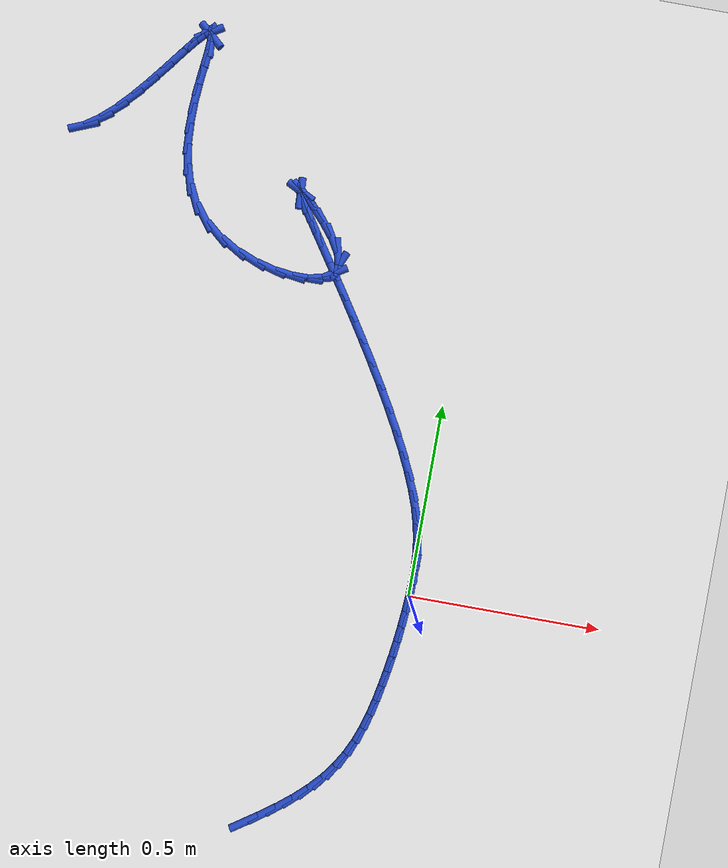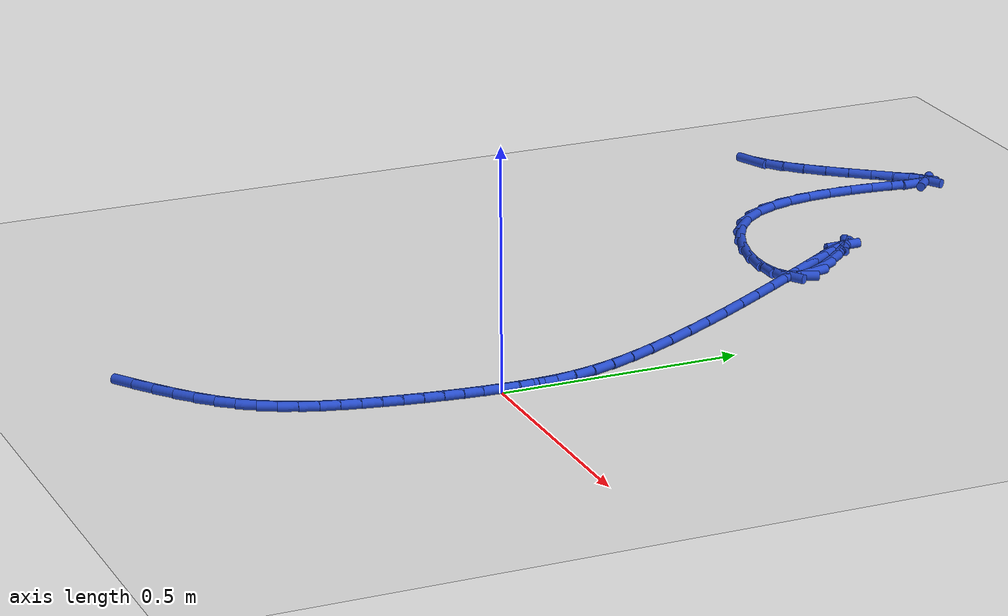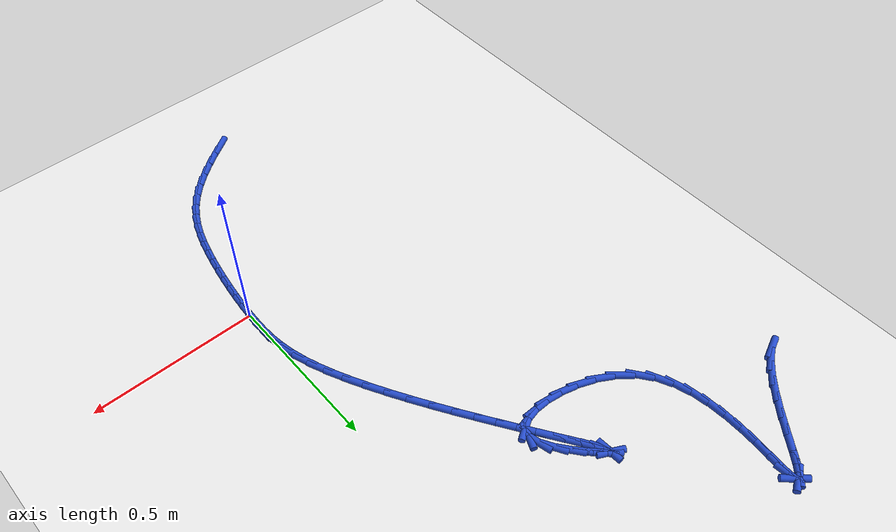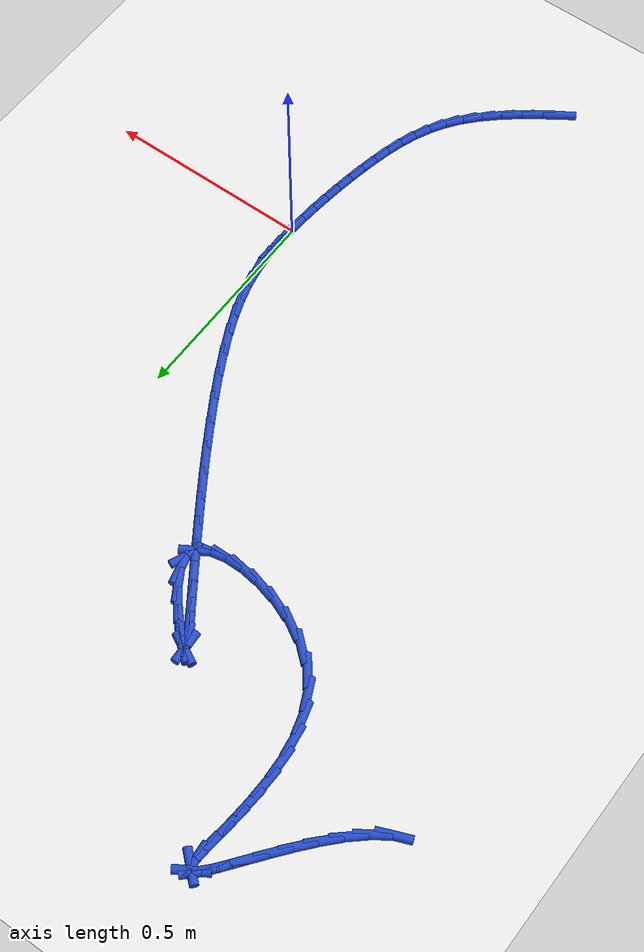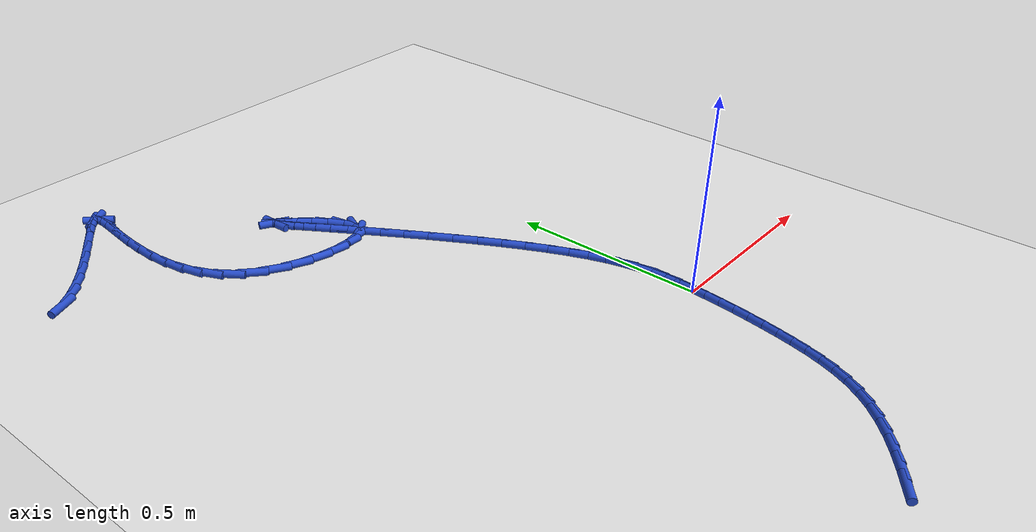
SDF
<sdf version="1.6">
 <world name="default">
  <model name="ground_plane">
   <static>1</static>
   <link name="link">
    <collision name="collision">
     <geometry><plane><normal>0 0 1</normal><size>100 100</size></plane></geometry>
     <surface><friction><ode><mu>100</mu><mu2>50</mu2></ode></friction></surface>
    </collision>
    <visual name="visual">
     <cast_shadows>0</cast_shadows>
     <geometry><plane><normal>0 0 1</normal><size>100 100</size></plane></geometry>
     <material>
      <script><uri>file://media/materials/scripts/gazebo.material</uri><name>Gazebo/WhiteGlow</name></script>
     </material>
    </visual>
   </link>
  </model>
  <model name="line">
   <link name="link_0">
    <pose>4.0115480381963664e-18 0.0 0.01 0 1.57 1.5303201860089708</pose>
    <collision name="collision">
     <geometry><cylinder><radius>0.01</radius><length>0.08</length></cylinder></geometry>
    </collision>
    <visual name="visual">
     <material>
      <script><name>Gazebo/Blue</name><uri>file://media/materials/scripts/gazebo.material</uri></script>
     </material>
     <geometry><cylinder><radius>0.01</radius><length>0.08</length></cylinder></geometry>
    </visual>
   </link>
   <link name="link_1">
    <pose>0.001520172077840823 0.037536726144683 0.01 0 1.57 -1.569441561724418</pose>
    <collision name="collision">
     <geometry><cylinder><radius>0.01</radius><length>0.08</length></cylinder></geometry>
    </collision>
    <visual name="visual">
     <material>
      <script><name>Gazebo/Blue</name><uri>file://media/materials/scripts/gazebo.material</uri></script>
     </material>
     <geometry><cylinder><radius>0.01</radius><length>0.08</length></cylinder></geometry>
    </visual>
   </link>
   <link name="link_2">
    <pose>0.0014697098571924629 0.07478465264896869 0.01 0 1.57 -1.5113080191222836</pose>
    <collision name="collision">
     <geometry><cylinder><radius>0.01</radius><length>0.08</length></cylinder></geometry>
    </collision>
    <visual name="visual">
     <material>
      <script><name>Gazebo/Blue</name><uri>file://media/materials/scripts/gazebo.material</uri></script>
     </material>
     <geometry><cylinder><radius>0.01</radius><length>0.08</length></cylinder></geometry>
    </visual>
   </link>
   <link name="link_3">
    <pose>-0.0007749658739909663 0.11247318894364157 0.01 0 1.57 -1.4412465973038162</pose>
    <collision name="collision">
     <geometry><cylinder><radius>0.01</radius><length>0.08</length></cylinder></geometry>
    </collision>
    <visual name="visual">
     <material>
      <script><name>Gazebo/Blue</name><uri>file://media/materials/scripts/gazebo.material</uri></script>
     </material>
     <geometry><cylinder><radius>0.01</radius><length>0.08</length></cylinder></geometry>
    </visual>
   </link>
   <link name="link_4">
    <pose>-0.005837434327755361 0.15133174445948613 0.01 0 1.57 -1.3651048219305941</pose>
    <collision name="collision">
     <geometry><cylinder><radius>0.01</radius><length>0.08</length></cylinder></geometry>
    </collision>
    <visual name="visual">
     <material>
      <script><name>Gazebo/Blue</name><uri>file://media/materials/scripts/gazebo.material</uri></script>
     </material>
     <geometry><cylinder><radius>0.01</radius><length>0.08</length></cylinder></geometry>
    </visual>
   </link>
   <link name="link_5">
    <pose>-0.014341274716146612 0.1920897286272868 0.01 0 1.57 -1.2888235404271693</pose>
    <collision name="collision">
     <geometry><cylinder><radius>0.01</radius><length>0.08</length></cylinder></geometry>
    </collision>
    <visual name="visual">
     <material>
      <script><name>Gazebo/Blue</name><uri>file://media/materials/scripts/gazebo.material</uri></script>
     </material>
     <geometry><cylinder><radius>0.01</radius><length>0.08</length></cylinder></geometry>
    </visual>
   </link>
   <link name="link_6">
    <pose>-0.02691006625121061 0.23547655087782815 0.01 0 1.57 -1.2180053051059394</pose>
    <collision name="collision">
     <geometry><cylinder><radius>0.01</radius><length>0.08</length></cylinder></geometry>
    </collision>
    <visual name="visual">
     <material>
      <script><name>Gazebo/Blue</name><uri>file://media/materials/scripts/gazebo.material</uri></script>
     </material>
     <geometry><cylinder><radius>0.01</radius><length>0.08</length></cylinder></geometry>
    </visual>
   </link>
   <link name="link_7">
    <pose>-0.04409027080819526 0.28213720961980204 0.01 0 1.57 -1.1616342007853082</pose>
    <collision name="collision">
     <geometry><cylinder><radius>0.01</radius><length>0.08</length></cylinder></geometry>
    </collision>
    <visual name="visual">
     <material>
      <script><name>Gazebo/Blue</name><uri>file://media/materials/scripts/gazebo.material</uri></script>
     </material>
     <geometry><cylinder><radius>0.01</radius><length>0.08</length></cylinder></geometry>
    </visual>
   </link>
   <link name="link_8">
    <pose>-0.06565740063969394 0.3318728379479226 0.01 0 1.57 -1.1191465528507305</pose>
    <collision name="collision">
     <geometry><cylinder><radius>0.01</radius><length>0.08</length></cylinder></geometry>
    </collision>
    <visual name="visual">
     <material>
      <script><name>Gazebo/Blue</name><uri>file://media/materials/scripts/gazebo.material</uri></script>
     </material>
     <geometry><cylinder><radius>0.01</radius><length>0.08</length></cylinder></geometry>
    </visual>
   </link>
   <link name="link_9">
    <pose>-0.09094335428555372 0.383998998675797 0.01 0 1.57 -1.0862942908348723</pose>
    <collision name="collision">
     <geometry><cylinder><radius>0.01</radius><length>0.08</length></cylinder></geometry>
    </collision>
    <visual name="visual">
     <material>
      <script><name>Gazebo/Blue</name><uri>file://media/materials/scripts/gazebo.material</uri></script>
     </material>
     <geometry><cylinder><radius>0.01</radius><length>0.08</length></cylinder></geometry>
    </visual>
   </link>
   <link name="link_10">
    <pose>-0.11927471622429982 0.4378254379567816 0.01 0 1.57 -1.0603783241716511</pose>
    <collision name="collision">
     <geometry><cylinder><radius>0.01</radius><length>0.08</length></cylinder></geometry>
    </collision>
    <visual name="visual">
     <material>
      <script><name>Gazebo/Blue</name><uri>file://media/materials/scripts/gazebo.material</uri></script>
     </material>
     <geometry><cylinder><radius>0.01</radius><length>0.08</length></cylinder></geometry>
    </visual>
   </link>
   <link name="link_11">
    <pose>-0.1499780709344574 0.4926619019442317 0.01 0 1.57 -1.0396504630270211</pose>
    <collision name="collision">
     <geometry><cylinder><radius>0.01</radius><length>0.08</length></cylinder></geometry>
    </collision>
    <visual name="visual">
     <material>
      <script><name>Gazebo/Blue</name><uri>file://media/materials/scripts/gazebo.material</uri></script>
     </material>
     <geometry><cylinder><radius>0.01</radius><length>0.08</length></cylinder></geometry>
    </visual>
   </link>
   <link name="link_12">
    <pose>-0.18238000289455186 0.547818136791504 0.01 0 1.57 -1.0229527557633562</pose>
    <collision name="collision">
     <geometry><cylinder><radius>0.01</radius><length>0.08</length></cylinder></geometry>
    </collision>
    <visual name="visual">
     <material>
      <script><name>Gazebo/Blue</name><uri>file://media/materials/scripts/gazebo.material</uri></script>
     </material>
     <geometry><cylinder><radius>0.01</radius><length>0.08</length></cylinder></geometry>
    </visual>
   </link>
   <link name="link_13">
    <pose>-0.21580709658310823 0.6026038886519541 0.01 0 1.57 -1.009515108304731</pose>
    <collision name="collision">
     <geometry><cylinder><radius>0.01</radius><length>0.08</length></cylinder></geometry>
    </collision>
    <visual name="visual">
     <material>
      <script><name>Gazebo/Blue</name><uri>file://media/materials/scripts/gazebo.material</uri></script>
     </material>
     <geometry><cylinder><radius>0.01</radius><length>0.08</length></cylinder></geometry>
    </visual>
   </link>
   <link name="link_14">
    <pose>-0.24958593647865188 0.6563289036789381 0.01 0 1.57 -0.99884240137922</pose>
    <collision name="collision">
     <geometry><cylinder><radius>0.01</radius><length>0.08</length></cylinder></geometry>
    </collision>
    <visual name="visual">
     <material>
      <script><name>Gazebo/Blue</name><uri>file://media/materials/scripts/gazebo.material</uri></script>
     </material>
     <geometry><cylinder><radius>0.01</radius><length>0.08</length></cylinder></geometry>
    </visual>
   </link>
   <link name="link_15">
    <pose>-0.283043107059708 0.7083029280258119 0.01 0 1.57 -0.990658316889918</pose>
    <collision name="collision">
     <geometry><cylinder><radius>0.01</radius><length>0.08</length></cylinder></geometry>
    </collision>
    <visual name="visual">
     <material>
      <script><name>Gazebo/Blue</name><uri>file://media/materials/scripts/gazebo.material</uri></script>
     </material>
     <geometry><cylinder><radius>0.01</radius><length>0.08</length></cylinder></geometry>
    </visual>
   </link>
   <link name="link_16">
    <pose>-0.3155051928048018 0.7578357078459317 0.01 0 1.57 -0.9848944452828642</pose>
    <collision name="collision">
     <geometry><cylinder><radius>0.01</radius><length>0.08</length></cylinder></geometry>
    </collision>
    <visual name="visual">
     <material>
      <script><name>Gazebo/Blue</name><uri>file://media/materials/scripts/gazebo.material</uri></script>
     </material>
     <geometry><cylinder><radius>0.01</radius><length>0.08</length></cylinder></geometry>
    </visual>
   </link>
   <link name="link_17">
    <pose>-0.3462987781924587 0.8042369892926535 0.01 0 1.57 -0.9817324799922449</pose>
    <collision name="collision">
     <geometry><cylinder><radius>0.01</radius><length>0.08</length></cylinder></geometry>
    </collision>
    <visual name="visual">
     <material>
      <script><name>Gazebo/Blue</name><uri>file://media/materials/scripts/gazebo.material</uri></script>
     </material>
     <geometry><cylinder><radius>0.01</radius><length>0.08</length></cylinder></geometry>
    </visual>
   </link>
   <link name="link_18">
    <pose>-0.37475044770120364 0.8468165185193332 0.01 0 1.57 -0.9817398526930333</pose>
    <collision name="collision">
     <geometry><cylinder><radius>0.01</radius><length>0.08</length></cylinder></geometry>
    </collision>
    <visual name="visual">
     <material>
      <script><name>Gazebo/Blue</name><uri>file://media/materials/scripts/gazebo.material</uri></script>
     </material>
     <geometry><cylinder><radius>0.01</radius><length>0.08</length></cylinder></geometry>
    </visual>
   </link>
   <link name="link_19">
    <pose>-0.4001867858095618 0.8848840416793262 0.01 0 1.57 -0.98622639043805</pose>
    <collision name="collision">
     <geometry><cylinder><radius>0.01</radius><length>0.08</length></cylinder></geometry>
    </collision>
    <visual name="visual">
     <material>
      <script><name>Gazebo/Blue</name><uri>file://media/materials/scripts/gazebo.material</uri></script>
     </material>
     <geometry><cylinder><radius>0.01</radius><length>0.08</length></cylinder></geometry>
    </visual>
   </link>
   <link name="link_20">
    <pose>-0.42193437699605896 0.9177493049259897 0.01 0 1.57 -0.9982581880913247</pose>
    <collision name="collision">
     <geometry><cylinder><radius>0.01</radius><length>0.08</length></cylinder></geometry>
    </collision>
    <visual name="visual">
     <material>
      <script><name>Gazebo/Blue</name><uri>file://media/materials/scripts/gazebo.material</uri></script>
     </material>
     <geometry><cylinder><radius>0.01</radius><length>0.08</length></cylinder></geometry>
    </visual>
   </link>
   <link name="link_21">
    <pose>-0.4393198057392197 0.9447220544126789 0.01 0 1.57 -1.0262091492527965</pose>
    <collision name="collision">
     <geometry><cylinder><radius>0.01</radius><length>0.08</length></cylinder></geometry>
    </collision>
    <visual name="visual">
     <material>
      <script><name>Gazebo/Blue</name><uri>file://media/materials/scripts/gazebo.material</uri></script>
     </material>
     <geometry><cylinder><radius>0.01</radius><length>0.08</length></cylinder></geometry>
    </visual>
   </link>
   <link name="link_22">
    <pose>-0.4516696565175697 0.9651120362927501 0.01 0 1.57 -1.102137192627309</pose>
    <collision name="collision">
     <geometry><cylinder><radius>0.01</radius><length>0.08</length></cylinder></geometry>
    </collision>
    <visual name="visual">
     <material>
      <script><name>Gazebo/Blue</name><uri>file://media/materials/scripts/gazebo.material</uri></script>
     </material>
     <geometry><cylinder><radius>0.01</radius><length>0.08</length></cylinder></geometry>
    </visual>
   </link>
   <link name="link_23">
    <pose>-0.4583105138096338 0.9782289967195585 0.01 0 1.57 -1.5206900530026566</pose>
    <collision name="collision">
     <geometry><cylinder><radius>0.01</radius><length>0.08</length></cylinder></geometry>
    </collision>
    <visual name="visual">
     <material>
      <script><name>Gazebo/Blue</name><uri>file://media/materials/scripts/gazebo.material</uri></script>
     </material>
     <geometry><cylinder><radius>0.01</radius><length>0.08</length></cylinder></geometry>
    </visual>
   </link>
   <link name="link_24">
    <pose>-0.45856896209393766 0.9833826818464615 0.01 0 1.57 -0.4754818953234487</pose>
    <collision name="collision">
     <geometry><cylinder><radius>0.01</radius><length>0.08</length></cylinder></geometry>
    </collision>
    <visual name="visual">
     <material>
      <script><name>Gazebo/Blue</name><uri>file://media/materials/scripts/gazebo.material</uri></script>
     </material>
     <geometry><cylinder><radius>0.01</radius><length>0.08</length></cylinder></geometry>
    </visual>
   </link>
   <link name="link_25">
    <pose>-0.4517715858490064 0.9798828378268143 0.01 0 1.57 -0.7239857403627098</pose>
    <collision name="collision">
     <geometry><cylinder><radius>0.01</radius><length>0.08</length></cylinder></geometry>
    </collision>
    <visual name="visual">
     <material>
      <script><name>Gazebo/Blue</name><uri>file://media/materials/scripts/gazebo.material</uri></script>
     </material>
     <geometry><cylinder><radius>0.01</radius><length>0.08</length></cylinder></geometry>
    </visual>
   </link>
   <link name="link_26">
    <pose>-0.4372449695533649 0.9670392108139725 0.01 0 1.57 -0.7848509200731941</pose>
    <collision name="collision">
     <geometry><cylinder><radius>0.01</radius><length>0.08</length></cylinder></geometry>
    </collision>
    <visual name="visual">
     <material>
      <script><name>Gazebo/Blue</name><uri>file://media/materials/scripts/gazebo.material</uri></script>
     </material>
     <geometry><cylinder><radius>0.01</radius><length>0.08</length></cylinder></geometry>
    </visual>
   </link>
   <link name="link_27">
    <pose>-0.4144042268481272 0.9442234533261684 0.01 0 1.57 -0.8289464774994784</pose>
    <collision name="collision">
     <geometry><cylinder><radius>0.01</radius><length>0.08</length></cylinder></geometry>
    </collision>
    <visual name="visual">
     <material>
      <script><name>Gazebo/Blue</name><uri>file://media/materials/scripts/gazebo.material</uri></script>
     </material>
     <geometry><cylinder><radius>0.01</radius><length>0.08</length></cylinder></geometry>
    </visual>
   </link>
   <link name="link_28">
    <pose>-0.3857670296895338 0.9129767640683096 0.01 0 1.57 -0.9010110229813774</pose>
    <collision name="collision">
     <geometry><cylinder><radius>0.01</radius><length>0.08</length></cylinder></geometry>
    </collision>
    <visual name="visual">
     <material>
      <script><name>Gazebo/Blue</name><uri>file://media/materials/scripts/gazebo.material</uri></script>
     </material>
     <geometry><cylinder><radius>0.01</radius><length>0.08</length></cylinder></geometry>
    </visual>
   </link>
   <link name="link_29">
    <pose>-0.3576955420767075 0.8775287047683877 0.01 0 1.57 -1.0355459715413426</pose>
    <collision name="collision">
     <geometry><cylinder><radius>0.01</radius><length>0.08</length></cylinder></geometry>
    </collision>
    <visual name="visual">
     <material>
      <script><name>Gazebo/Blue</name><uri>file://media/materials/scripts/gazebo.material</uri></script>
     </material>
     <geometry><cylinder><radius>0.01</radius><length>0.08</length></cylinder></geometry>
    </visual>
   </link>
   <link name="link_30">
    <pose>-0.33679098569463717 0.8422760045814291 0.01 0 1.57 -1.3415357963832621</pose>
    <collision name="collision">
     <geometry><cylinder><radius>0.01</radius><length>0.08</length></cylinder></geometry>
    </collision>
    <visual name="visual">
     <material>
      <script><name>Gazebo/Blue</name><uri>file://media/materials/scripts/gazebo.material</uri></script>
     </material>
     <geometry><cylinder><radius>0.01</radius><length>0.08</length></cylinder></geometry>
    </visual>
   </link>
   <link name="link_31">
    <pose>-0.3296336503719831 0.8116056739503711 0.01 0 1.57 1.1548832909394582</pose>
    <collision name="collision">
     <geometry><cylinder><radius>0.01</radius><length>0.08</length></cylinder></geometry>
    </collision>
    <visual name="visual">
     <material>
      <script><name>Gazebo/Blue</name><uri>file://media/materials/scripts/gazebo.material</uri></script>
     </material>
     <geometry><cylinder><radius>0.01</radius><length>0.08</length></cylinder></geometry>
    </visual>
   </link>
   <link name="link_32">
    <pose>-0.3398286431576098 0.7885233386767022 0.01 0 1.57 0.5467809057627173</pose>
    <collision name="collision">
     <geometry><cylinder><radius>0.01</radius><length>0.08</length></cylinder></geometry>
    </collision>
    <visual name="visual">
     <material>
      <script><name>Gazebo/Blue</name><uri>file://media/materials/scripts/gazebo.material</uri></script>
     </material>
     <geometry><cylinder><radius>0.01</radius><length>0.08</length></cylinder></geometry>
    </visual>
   </link>
   <link name="link_33">
    <pose>-0.36494810593158183 0.7732335040784352 0.01 0 1.57 0.20402361852901116</pose>
    <collision name="collision">
     <geometry><cylinder><radius>0.01</radius><length>0.08</length></cylinder></geometry>
    </collision>
    <visual name="visual">
     <material>
      <script><name>Gazebo/Blue</name><uri>file://media/materials/scripts/gazebo.material</uri></script>
     </material>
     <geometry><cylinder><radius>0.01</radius><length>0.08</length></cylinder></geometry>
    </visual>
   </link>
   <link name="link_34">
    <pose>-0.40183410732965896 0.7656017006806173 0.01 0 1.57 0.002379215280133474</pose>
    <collision name="collision">
     <geometry><cylinder><radius>0.01</radius><length>0.08</length></cylinder></geometry>
    </collision>
    <visual name="visual">
     <material>
      <script><name>Gazebo/Blue</name><uri>file://media/materials/scripts/gazebo.material</uri></script>
     </material>
     <geometry><cylinder><radius>0.01</radius><length>0.08</length></cylinder></geometry>
    </visual>
   </link>
   <link name="link_35">
    <pose>-0.4473287159876009 0.7654934590082946 0.01 0 1.57 -0.14195385486934853</pose>
    <collision name="collision">
     <geometry><cylinder><radius>0.01</radius><length>0.08</length></cylinder></geometry>
    </collision>
    <visual name="visual">
     <material>
      <script><name>Gazebo/Blue</name><uri>file://media/materials/scripts/gazebo.material</uri></script>
     </material>
     <geometry><cylinder><radius>0.01</radius><length>0.08</length></cylinder></geometry>
    </visual>
   </link>
   <link name="link_36">
    <pose>-0.49827400054116744 0.7727743095865146 0.01 0 1.57 -0.26653194855929</pose>
    <collision name="collision">
     <geometry><cylinder><radius>0.01</radius><length>0.08</length></cylinder></geometry>
    </collision>
    <visual name="visual">
     <material>
      <script><name>Gazebo/Blue</name><uri>file://media/materials/scripts/gazebo.material</uri></script>
     </material>
     <geometry><cylinder><radius>0.01</radius><length>0.08</length></cylinder></geometry>
    </visual>
   </link>
   <link name="link_37">
    <pose>-0.5515120296261179 0.787309782940324 0.01 0 1.57 -0.39208100032786436</pose>
    <collision name="collision">
     <geometry><cylinder><radius>0.01</radius><length>0.08</length></cylinder></geometry>
    </collision>
    <visual name="visual">
     <material>
      <script><name>Gazebo/Blue</name><uri>file://media/materials/scripts/gazebo.material</uri></script>
     </material>
     <geometry><cylinder><radius>0.01</radius><length>0.08</length></cylinder></geometry>
    </visual>
   </link>
   <link name="link_38">
    <pose>-0.603884871878213 0.8089654095947705 0.01 0 1.57 -0.5347962024614153</pose>
    <collision name="collision">
     <geometry><cylinder><radius>0.01</radius><length>0.08</length></cylinder></geometry>
    </collision>
    <visual name="visual">
     <material>
      <script><name>Gazebo/Blue</name><uri>file://media/materials/scripts/gazebo.material</uri></script>
     </material>
     <geometry><cylinder><radius>0.01</radius><length>0.08</length></cylinder></geometry>
    </visual>
   </link>
   <link name="link_39">
    <pose>-0.6522345959332122 0.8376067200749006 0.01 0 1.57 -0.7114910100390018</pose>
    <collision name="collision">
     <geometry><cylinder><radius>0.01</radius><length>0.08</length></cylinder></geometry>
    </collision>
    <visual name="visual">
     <material>
      <script><name>Gazebo/Blue</name><uri>file://media/materials/scripts/gazebo.material</uri></script>
     </material>
     <geometry><cylinder><radius>0.01</radius><length>0.08</length></cylinder></geometry>
    </visual>
   </link>
   <link name="link_40">
    <pose>-0.6934032704268751 0.8730992449057611 0.01 0 1.57 -0.9291482017985081</pose>
    <collision name="collision">
     <geometry><cylinder><radius>0.01</radius><length>0.08</length></cylinder></geometry>
    </collision>
    <visual name="visual">
     <material>
      <script><name>Gazebo/Blue</name><uri>file://media/materials/scripts/gazebo.material</uri></script>
     </material>
     <geometry><cylinder><radius>0.01</radius><length>0.08</length></cylinder></geometry>
    </visual>
   </link>
   <link name="link_41">
    <pose>-0.7247947248926568 0.9151164952808559 0.01 0 1.57 -1.1340886970043256</pose>
    <collision name="collision">
     <geometry><cylinder><radius>0.01</radius><length>0.08</length></cylinder></geometry>
    </collision>
    <visual name="visual">
     <material>
      <script><name>Gazebo/Blue</name><uri>file://media/materials/scripts/gazebo.material</uri></script>
     </material>
     <geometry><cylinder><radius>0.01</radius><length>0.08</length></cylinder></geometry>
    </visual>
   </link>
   <link name="link_42">
    <pose>-0.7468201862753743 0.9623040033318098 0.01 0 1.57 -1.2998409286618695</pose>
    <collision name="collision">
     <geometry><cylinder><radius>0.01</radius><length>0.08</length></cylinder></geometry>
    </collision>
    <visual name="visual">
     <material>
      <script><name>Gazebo/Blue</name><uri>file://media/materials/scripts/gazebo.material</uri></script>
     </material>
     <geometry><cylinder><radius>0.01</radius><length>0.08</length></cylinder></geometry>
    </visual>
   </link>
   <link name="link_43">
    <pose>-0.7608930778095016 1.0129647336274197 0.01 0 1.57 -1.4280867984837846</pose>
    <collision name="collision">
     <geometry><cylinder><radius>0.01</radius><length>0.08</length></cylinder></geometry>
    </collision>
    <visual name="visual">
     <material>
      <script><name>Gazebo/Blue</name><uri>file://media/materials/scripts/gazebo.material</uri></script>
     </material>
     <geometry><cylinder><radius>0.01</radius><length>0.08</length></cylinder></geometry>
    </visual>
   </link>
   <link name="link_44">
    <pose>-0.7684275103307765 1.0654014157027956 0.01 0 1.57 -1.524935566924673</pose>
    <collision name="collision">
     <geometry><cylinder><radius>0.01</radius><length>0.08</length></cylinder></geometry>
    </collision>
    <visual name="visual">
     <material>
      <script><name>Gazebo/Blue</name><uri>file://media/materials/scripts/gazebo.material</uri></script>
     </material>
     <geometry><cylinder><radius>0.01</radius><length>0.08</length></cylinder></geometry>
    </visual>
   </link>
   <link name="link_45">
    <pose>-0.7708375946749381 1.1179167790930475 0.01 0 1.57 1.545256981210594</pose>
    <collision name="collision">
     <geometry><cylinder><radius>0.01</radius><length>0.08</length></cylinder></geometry>
    </collision>
    <visual name="visual">
     <material>
      <script><name>Gazebo/Blue</name><uri>file://media/materials/scripts/gazebo.material</uri></script>
     </material>
     <geometry><cylinder><radius>0.01</radius><length>0.08</length></cylinder></geometry>
    </visual>
   </link>
   <link name="link_46">
    <pose>-0.7695374416777249 1.168813553333286 0.01 0 1.57 1.4953573665496562</pose>
    <collision name="collision">
     <geometry><cylinder><radius>0.01</radius><length>0.08</length></cylinder></geometry>
    </collision>
    <visual name="visual">
     <material>
      <script><name>Gazebo/Blue</name><uri>file://media/materials/scripts/gazebo.material</uri></script>
     </material>
     <geometry><cylinder><radius>0.01</radius><length>0.08</length></cylinder></geometry>
    </visual>
   </link>
   <link name="link_47">
    <pose>-0.7659411621748754 1.2163944679586205 0.01 0 1.57 1.4659780381797278</pose>
    <collision name="collision">
     <geometry><cylinder><radius>0.01</radius><length>0.08</length></cylinder></geometry>
    </collision>
    <visual name="visual">
     <material>
      <script><name>Gazebo/Blue</name><uri>file://media/materials/scripts/gazebo.material</uri></script>
     </material>
     <geometry><cylinder><radius>0.01</radius><length>0.08</length></cylinder></geometry>
    </visual>
   </link>
   <link name="link_48">
    <pose>-0.761462867002128 1.2589622525041617 0.01 0 1.57 1.4611847831966518</pose>
    <collision name="collision">
     <geometry><cylinder><radius>0.01</radius><length>0.08</length></cylinder></geometry>
    </collision>
    <visual name="visual">
     <material>
      <script><name>Gazebo/Blue</name><uri>file://media/materials/scripts/gazebo.material</uri></script>
     </material>
     <geometry><cylinder><radius>0.01</radius><length>0.08</length></cylinder></geometry>
    </visual>
   </link>
   <link name="link_49">
    <pose>-0.7575166669952214 1.2948196365050189 0.01 0 1.57 1.498064558507656</pose>
    <collision name="collision">
     <geometry><cylinder><radius>0.01</radius><length>0.08</length></cylinder></geometry>
    </collision>
    <visual name="visual">
     <material>
      <script><name>Gazebo/Blue</name><uri>file://media/materials/scripts/gazebo.material</uri></script>
     </material>
     <geometry><cylinder><radius>0.01</radius><length>0.08</length></cylinder></geometry>
    </visual>
   </link>
   <link name="link_50">
    <pose>-0.7555166729898943 1.3222693494963025 0.01 0 1.57 -1.4925281318502241</pose>
    <collision name="collision">
     <geometry><cylinder><radius>0.01</radius><length>0.08</length></cylinder></geometry>
    </collision>
    <visual name="visual">
     <material>
      <script><name>Gazebo/Blue</name><uri>file://media/materials/scripts/gazebo.material</uri></script>
     </material>
     <geometry><cylinder><radius>0.01</radius><length>0.08</length></cylinder></geometry>
    </visual>
   </link>
   <link name="link_51">
    <pose>-0.7568769958218851 1.3396141210131227 0.01 0 1.57 -0.7347325765236543</pose>
    <collision name="collision">
     <geometry><cylinder><radius>0.01</radius><length>0.08</length></cylinder></geometry>
    </collision>
    <visual name="visual">
     <material>
      <script><name>Gazebo/Blue</name><uri>file://media/materials/scripts/gazebo.material</uri></script>
     </material>
     <geometry><cylinder><radius>0.01</radius><length>0.08</length></cylinder></geometry>
    </visual>
   </link>
   <link name="link_52">
    <pose>-0.7630117305097015 1.3451567104547892 0.01 0 1.57 0.5439264333364534</pose>
    <collision name="collision">
     <geometry><cylinder><radius>0.01</radius><length>0.08</length></cylinder></geometry>
    </collision>
    <visual name="visual">
     <material>
      <script><name>Gazebo/Blue</name><uri>file://media/materials/scripts/gazebo.material</uri></script>
     </material>
     <geometry><cylinder><radius>0.01</radius><length>0.08</length></cylinder></geometry>
    </visual>
   </link>
   <link name="link_53">
    <pose>-0.7749422431518169 1.337941380919843 0.01 0 1.57 0.8114322425674704</pose>
    <collision name="collision">
     <geometry><cylinder><radius>0.01</radius><length>0.08</length></cylinder></geometry>
    </collision>
    <visual name="visual">
     <material>
      <script><name>Gazebo/Blue</name><uri>file://media/materials/scripts/gazebo.material</uri></script>
     </material>
     <geometry><cylinder><radius>0.01</radius><length>0.08</length></cylinder></geometry>
    </visual>
   </link>
   <link name="link_54">
    <pose>-0.7922774429933019 1.3196792273299247 0.01 0 1.57 0.8863629968806034</pose>
    <collision name="collision">
     <geometry><cylinder><radius>0.01</radius><length>0.08</length></cylinder></geometry>
    </collision>
    <visual name="visual">
     <material>
      <script><name>Gazebo/Blue</name><uri>file://media/materials/scripts/gazebo.material</uri></script>
     </material>
     <geometry><cylinder><radius>0.01</radius><length>0.08</length></cylinder></geometry>
    </visual>
   </link>
   <link name="link_55">
    <pose>-0.8143088159136778 1.2926806653792762 0.01 0 1.57 0.9093402728886115</pose>
    <collision name="collision">
     <geometry><cylinder><radius>0.01</radius><length>0.08</length></cylinder></geometry>
    </collision>
    <visual name="visual">
     <material>
      <script><name>Gazebo/Blue</name><uri>file://media/materials/scripts/gazebo.material</uri></script>
     </material>
     <geometry><cylinder><radius>0.01</radius><length>0.08</length></cylinder></geometry>
    </visual>
   </link>
   <link name="link_56">
    <pose>-0.8403278477924655 1.2592561107621378 0.01 0 1.57 0.908090627107653</pose>
    <collision name="collision">
     <geometry><cylinder><radius>0.01</radius><length>0.08</length></cylinder></geometry>
    </collision>
    <visual name="visual">
     <material>
      <script><name>Gazebo/Blue</name><uri>file://media/materials/scripts/gazebo.material</uri></script>
     </material>
     <geometry><cylinder><radius>0.01</radius><length>0.08</length></cylinder></geometry>
    </visual>
   </link>
   <link name="link_57">
    <pose>-0.869626024509186 1.2217159791727499 0.01 0 1.57 0.8900010000514996</pose>
    <collision name="collision">
     <geometry><cylinder><radius>0.01</radius><length>0.08</length></cylinder></geometry>
    </collision>
    <visual name="visual">
     <material>
      <script><name>Gazebo/Blue</name><uri>file://media/materials/scripts/gazebo.material</uri></script>
     </material>
     <geometry><cylinder><radius>0.01</radius><length>0.08</length></cylinder></geometry>
    </visual>
   </link>
   <link name="link_58">
    <pose>-0.9014948319433603 1.1823706863053538 0.01 0 1.57 0.8556838305200329</pose>
    <collision name="collision">
     <geometry><cylinder><radius>0.01</radius><length>0.08</length></cylinder></geometry>
    </collision>
    <visual name="visual">
     <material>
      <script><name>Gazebo/Blue</name><uri>file://media/materials/scripts/gazebo.material</uri></script>
     </material>
     <geometry><cylinder><radius>0.01</radius><length>0.08</length></cylinder></geometry>
    </visual>
   </link>
   <link name="link_59">
    <pose>-0.9352257559745096 1.1435306478541902 0.01 0 1.57 0.801471516019866</pose>
    <collision name="collision">
     <geometry><cylinder><radius>0.01</radius><length>0.08</length></cylinder></geometry>
    </collision>
    <visual name="visual">
     <material>
      <script><name>Gazebo/Blue</name><uri>file://media/materials/scripts/gazebo.material</uri></script>
     </material>
     <geometry><cylinder><radius>0.01</radius><length>0.08</length></cylinder></geometry>
    </visual>
   </link>
   <link name="link_60">
    <pose>-0.9701102824821544 1.1075062795135 0.01 0 1.57 0.718587390450852</pose>
    <collision name="collision">
     <geometry><cylinder><radius>0.01</radius><length>0.08</length></cylinder></geometry>
    </collision>
    <visual name="visual">
     <material>
      <script><name>Gazebo/Blue</name><uri>file://media/materials/scripts/gazebo.material</uri></script>
     </material>
     <geometry><cylinder><radius>0.01</radius><length>0.08</length></cylinder></geometry>
    </visual>
   </link>
   <link name="link_61">
    <pose>-1.005439897345817 1.0766079969775242 0.01 0 1.57 0.5896655087444514</pose>
    <collision name="collision">
     <geometry><cylinder><radius>0.01</radius><length>0.08</length></cylinder></geometry>
    </collision>
    <visual name="visual">
     <material>
      <script><name>Gazebo/Blue</name><uri>file://media/materials/scripts/gazebo.material</uri></script>
     </material>
     <geometry><cylinder><radius>0.01</radius><length>0.08</length></cylinder></geometry>
    </visual>
   </link>
   <link name="link_62">
    <pose>-1.0405060864450175 1.0531462159405025 0.01 0 1.57 0.3829518375990623</pose>
    <collision name="collision">
     <geometry><cylinder><radius>0.01</radius><length>0.08</length></cylinder></geometry>
    </collision>
    <visual name="visual">
     <material>
      <script><name>Gazebo/Blue</name><uri>file://media/materials/scripts/gazebo.material</uri></script>
     </material>
     <geometry><cylinder><radius>0.01</radius><length>0.08</length></cylinder></geometry>
    </visual>
   </link>
   <link name="link_232">
    <pose>-0.31688656756055583 -0.6470569460609841 0.01 0 1.57 0.5961891135121676</pose>
    <collision name="collision">
     <geometry><cylinder><radius>0.01</radius><length>0.08</length></cylinder></geometry>
    </collision>
    <visual name="visual">
     <material>
      <script><name>Gazebo/Blue</name><uri>file://media/materials/scripts/gazebo.material</uri></script>
     </material>
     <geometry><cylinder><radius>0.01</radius><length>0.08</length></cylinder></geometry>
    </visual>
   </link>
   <link name="link_233">
    <pose>-0.2750905766246516 -0.6186959928883247 0.01 0 1.57 0.6337842834136505</pose>
    <collision name="collision">
     <geometry><cylinder><radius>0.01</radius><length>0.08</length></cylinder></geometry>
    </collision>
    <visual name="visual">
     <material>
      <script><name>Gazebo/Blue</name><uri>file://media/materials/scripts/gazebo.material</uri></script>
     </material>
     <geometry><cylinder><radius>0.01</radius><length>0.08</length></cylinder></geometry>
    </visual>
   </link>
   <link name="link_234">
    <pose>-0.23537027076187717 -0.5895044742769064 0.01 0 1.57 0.6833194040547882</pose>
    <collision name="collision">
     <geometry><cylinder><radius>0.01</radius><length>0.08</length></cylinder></geometry>
    </collision>
    <visual name="visual">
     <material>
      <script><name>Gazebo/Blue</name><uri>file://media/materials/scripts/gazebo.material</uri></script>
     </material>
     <geometry><cylinder><radius>0.01</radius><length>0.08</length></cylinder></geometry>
    </visual>
   </link>
   <link name="link_235">
    <pose>-0.19834363308129305 -0.5593586357273165 0.01 0 1.57 0.7470566974352337</pose>
    <collision name="collision">
     <geometry><cylinder><radius>0.01</radius><length>0.08</length></cylinder></geometry>
    </collision>
    <visual name="visual">
     <material>
      <script><name>Gazebo/Blue</name><uri>file://media/materials/scripts/gazebo.material</uri></script>
     </material>
     <geometry><cylinder><radius>0.01</radius><length>0.08</length></cylinder></geometry>
    </visual>
   </link>
   <link name="link_236">
    <pose>-0.16462864669195948 -0.5281347227401416 0.01 0 1.57 0.8278151351910485</pose>
    <collision name="collision">
     <geometry><cylinder><radius>0.01</radius><length>0.08</length></cylinder></geometry>
    </collision>
    <visual name="visual">
     <material>
      <script><name>Gazebo/Blue</name><uri>file://media/materials/scripts/gazebo.material</uri></script>
     </material>
     <geometry><cylinder><radius>0.01</radius><length>0.08</length></cylinder></geometry>
    </visual>
   </link>
   <link name="link_237">
    <pose>-0.13484329470293677 -0.49570898081596865 0.01 0 1.57 0.9278364742155621</pose>
    <collision name="collision">
     <geometry><cylinder><radius>0.01</radius><length>0.08</length></cylinder></geometry>
    </collision>
    <visual name="visual">
     <material>
      <script><name>Gazebo/Blue</name><uri>file://media/materials/scripts/gazebo.material</uri></script>
     </material>
     <geometry><cylinder><radius>0.01</radius><length>0.08</length></cylinder></geometry>
    </visual>
   </link>
   <link name="link_238">
    <pose>-0.10956478688580626 -0.46196627030432524 0.01 0 1.57 1.033954428636178</pose>
    <collision name="collision">
     <geometry><cylinder><radius>0.01</radius><length>0.08</length></cylinder></geometry>
    </collision>
    <visual name="visual">
     <material>
      <script><name>Gazebo/Blue</name><uri>file://media/materials/scripts/gazebo.material</uri></script>
     </material>
     <geometry><cylinder><radius>0.01</radius><length>0.08</length></cylinder></geometry>
    </visual>
   </link>
   <link name="link_239">
    <pose>-0.08871329421077374 -0.42693027487340485 0.01 0 1.57 1.1308849561999008</pose>
    <collision name="collision">
     <geometry><cylinder><radius>0.01</radius><length>0.08</length></cylinder></geometry>
    </collision>
    <visual name="visual">
     <material>
      <script><name>Gazebo/Blue</name><uri>file://media/materials/scripts/gazebo.material</uri></script>
     </material>
     <geometry><cylinder><radius>0.01</radius><length>0.08</length></cylinder></geometry>
    </visual>
   </link>
   <link name="link_240">
    <pose>-0.07167805632641885 -0.39073685672316816 0.01 0 1.57 1.2146074496786317</pose>
    <collision name="collision">
     <geometry><cylinder><radius>0.01</radius><length>0.08</length></cylinder></geometry>
    </collision>
    <visual name="visual">
     <material>
      <script><name>Gazebo/Blue</name><uri>file://media/materials/scripts/gazebo.material</uri></script>
     </material>
     <geometry><cylinder><radius>0.01</radius><length>0.08</length></cylinder></geometry>
    </visual>
   </link>
   <link name="link_241">
    <pose>-0.057833120659289604 -0.3535250879624485 0.01 0 1.57 1.2828772479065935</pose>
    <collision name="collision">
     <geometry><cylinder><radius>0.01</radius><length>0.08</length></cylinder></geometry>
    </collision>
    <visual name="visual">
     <material>
      <script><name>Gazebo/Blue</name><uri>file://media/materials/scripts/gazebo.material</uri></script>
     </material>
     <geometry><cylinder><radius>0.01</radius><length>0.08</length></cylinder></geometry>
    </visual>
   </link>
   <link name="link_242">
    <pose>-0.04655253463593542 -0.31543404070008213 0.01 0 1.57 1.334698967038506</pose>
    <collision name="collision">
     <geometry><cylinder><radius>0.01</radius><length>0.08</length></cylinder></geometry>
    </collision>
    <visual name="visual">
     <material>
      <script><name>Gazebo/Blue</name><uri>file://media/materials/scripts/gazebo.material</uri></script>
     </material>
     <geometry><cylinder><radius>0.01</radius><length>0.08</length></cylinder></geometry>
    </visual>
   </link>
   <link name="link_243">
    <pose>-0.037210345682905197 -0.2766027870449044 0.01 0 1.57 1.3699713429519114</pose>
    <collision name="collision">
     <geometry><cylinder><radius>0.01</radius><length>0.08</length></cylinder></geometry>
    </collision>
    <visual name="visual">
     <material>
      <script><name>Gazebo/Blue</name><uri>file://media/materials/scripts/gazebo.material</uri></script>
     </material>
     <geometry><cylinder><radius>0.01</radius><length>0.08</length></cylinder></geometry>
    </visual>
   </link>
   <link name="link_244">
    <pose>-0.02918321705071852 -0.23717081974391863 0.01 0 1.57 1.3940990208603645</pose>
    <collision name="collision">
     <geometry><cylinder><radius>0.01</radius><length>0.08</length></cylinder></geometry>
    </collision>
    <visual name="visual">
     <material>
      <script><name>Gazebo/Blue</name><uri>file://media/materials/scripts/gazebo.material</uri></script>
     </material>
     <geometry><cylinder><radius>0.01</radius><length>0.08</length></cylinder></geometry>
    </visual>
   </link>
   <link name="link_245">
    <pose>-0.022066178943761252 -0.19731274609175412 0.01 0 1.57 1.4164130270528728</pose>
    <collision name="collision">
     <geometry><cylinder><radius>0.01</radius><length>0.08</length></cylinder></geometry>
    </collision>
    <visual name="visual">
     <material>
      <script><name>Gazebo/Blue</name><uri>file://media/materials/scripts/gazebo.material</uri></script>
     </material>
     <geometry><cylinder><radius>0.01</radius><length>0.08</length></cylinder></geometry>
    </visual>
   </link>
   <link name="link_246">
    <pose>-0.015833758222735975 -0.15726419842907516 0.01 0 1.57 1.4381872034587246</pose>
    <collision name="collision">
     <geometry><cylinder><radius>0.01</radius><length>0.08</length></cylinder></geometry>
    </collision>
    <visual name="visual">
     <material>
      <script><name>Gazebo/Blue</name><uri>file://media/materials/scripts/gazebo.material</uri></script>
     </material>
     <geometry><cylinder><radius>0.01</radius><length>0.08</length></cylinder></geometry>
    </visual>
   </link>
   <link name="link_247">
    <pose>-0.010498442427744952 -0.11726691337222102 0.01 0 1.57 1.4597874287938009</pose>
    <collision name="collision">
     <geometry><cylinder><radius>0.01</radius><length>0.08</length></cylinder></geometry>
    </collision>
    <visual name="visual">
     <material>
      <script><name>Gazebo/Blue</name><uri>file://media/materials/scripts/gazebo.material</uri></script>
     </material>
     <geometry><cylinder><radius>0.01</radius><length>0.08</length></cylinder></geometry>
    </visual>
   </link>
   <link name="link_248">
    <pose>-0.006072719098890446 -0.07756262753753099 0.01 0 1.57 1.4815856071251026</pose>
    <collision name="collision">
     <geometry><cylinder><radius>0.01</radius><length>0.08</length></cylinder></geometry>
    </collision>
    <visual name="visual">
     <material>
      <script><name>Gazebo/Blue</name><uri>file://media/materials/scripts/gazebo.material</uri></script>
     </material>
     <geometry><cylinder><radius>0.01</radius><length>0.08</length></cylinder></geometry>
    </visual>
   </link>
   <link name="link_249">
    <pose>-0.0025690757762747074 -0.03839307754134423 0.01 0 1.57 1.5039808549869897</pose>
    <collision name="collision">
     <geometry><cylinder><radius>0.01</radius><length>0.08</length></cylinder></geometry>
    </collision>
    <visual name="visual">
     <material>
      <script><name>Gazebo/Blue</name><uri>file://media/materials/scripts/gazebo.material</uri></script>
     </material>
     <geometry><cylinder><radius>0.01</radius><length>0.08</length></cylinder></geometry>
    </visual>
   </link>
   <link name="link_250">
    <pose>3.2526065174565133e-18 -1.3877787807814457e-17 0.01 0 1.57 1.5274248428178463</pose>
    <collision name="collision">
     <geometry><cylinder><radius>0.01</radius><length>0.08</length></cylinder></geometry>
    </collision>
    <visual name="visual">
     <material>
      <script><name>Gazebo/Blue</name><uri>file://media/materials/scripts/gazebo.material</uri></script>
     </material>
     <geometry><cylinder><radius>0.01</radius><length>0.08</length></cylinder></geometry>
    </visual>
   </link>
   <link name="link_251">
    <pose>0.0016220206898314282 0.03737486847016239 0.01 0 1.57 1.5524547737211902</pose>
    <collision name="collision">
     <geometry><cylinder><radius>0.01</radius><length>0.08</length></cylinder></geometry>
    </collision>
    <visual name="visual">
     <material>
      <script><name>Gazebo/Blue</name><uri>file://media/materials/scripts/gazebo.material</uri></script>
     </material>
     <geometry><cylinder><radius>0.01</radius><length>0.08</length></cylinder></geometry>
    </visual>
   </link>
   <link name="link_252">
    <pose>0.00228449875311731 0.07348979125280374 0.01 0 1.57 1.5397204007832346</pose>
    <collision name="collision">
     <geometry><cylinder><radius>0.01</radius><length>0.08</length></cylinder></geometry>
    </collision>
    <visual name="visual">
     <material>
      <script><name>Gazebo/Blue</name><uri>file://media/materials/scripts/gazebo.material</uri></script>
     </material>
     <geometry><cylinder><radius>0.01</radius><length>0.08</length></cylinder></geometry>
    </visual>
   </link>
  </model>
 </world>
</sdf>
